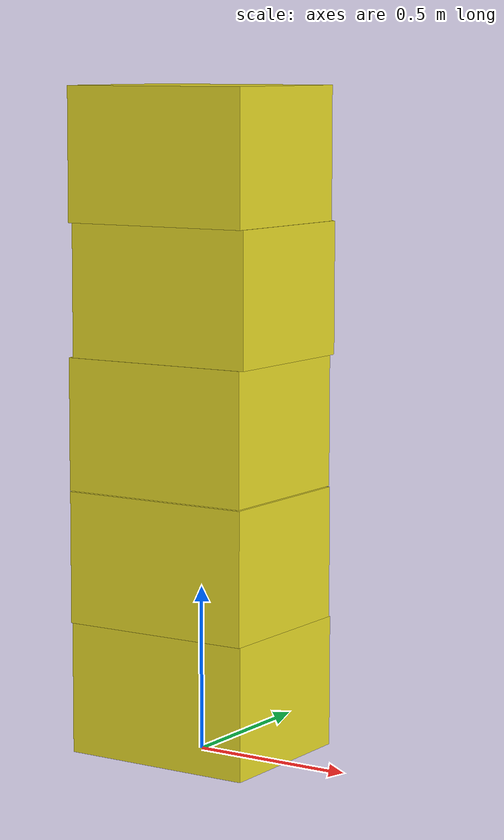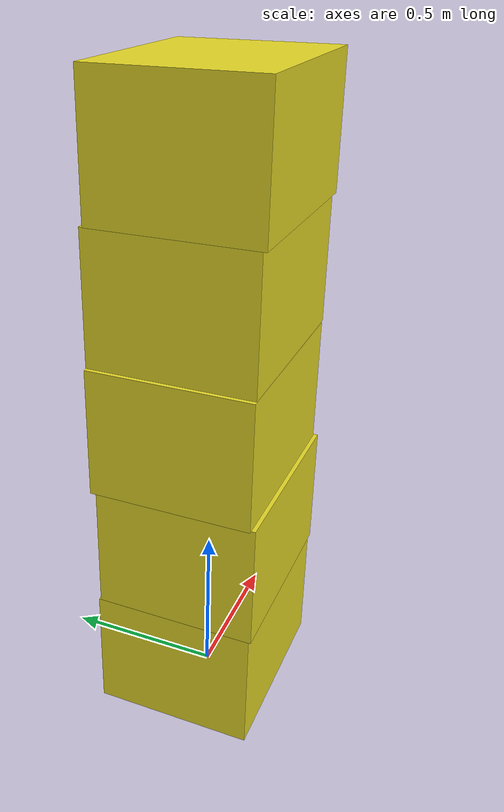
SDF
<?xml version="1.0" encoding="UTF-8"?>
<sdf version='1.4'>
   <model name="baggage_C_x5">
      <model name="baggage_C_0">
         <static>true</static>
         <link name="link">
               <collision name="collision">
                  <geometry>
                     <box>
                        <size>0.6 0.5 0.4</size>
                     </box>
                  </geometry>
               </collision>
               <visual name="visual">
                  <geometry>
                     <box>
                        <size>0.6 0.5 0.4</size>
                     </box>
                  </geometry>
                  <material>
                     <script>
                        <uri>file://media/materials/scripts/gazebo.material</uri>
                        <name>Gazebo/Yellow</name>
                     </script>
                  </material>
               </visual>
            </link>
            <pose frame=''>0 0 0.2 0 0 0</pose>
      </model>
      <model name="baggage_C_1">
         <static>true</static>
         <link name="link">
               <collision name="collision">
                  <geometry>
                     <box>
                        <size>0.6 0.5 0.4</size>
                     </box>
                  </geometry>
               </collision>
               <visual name="visual">
                  <geometry>
                     <box>
                        <size>0.6 0.5 0.4</size>
                     </box>
                  </geometry>
                  <material>
                     <script>
                        <uri>file://media/materials/scripts/gazebo.material</uri>
                        <name>Gazebo/Yellow</name>
                     </script>
                  </material>
               </visual>
            </link>
            <pose frame=''>0.0004 -0.0065 0.6 0 0 0</pose>
      </model>
      <model name="baggage_C_2">
         <static>true</static>
         <link name="link">
               <collision name="collision">
                  <geometry>
                     <box>
                        <size>0.6 0.5 0.4</size>
                     </box>
                  </geometry>
               </collision>
               <visual name="visual">
                  <geometry>
                     <box>
                        <size>0.6 0.5 0.4</size>
                     </box>
                  </geometry>
                  <material>
                     <script>
                        <uri>file://media/materials/scripts/gazebo.material</uri>
                        <name>Gazebo/Yellow</name>
                     </script>
                  </material>
               </visual>
            </link>
            <pose frame=''>-0.0097 0.0061 1.0 0 0 0</pose>
      </model>
      <model name="baggage_C_3">
         <static>true</static>
         <link name="link">
               <collision name="collision">
                  <geometry>
                     <box>
                        <size>0.6 0.5 0.4</size>
                     </box>
                  </geometry>
               </collision>
               <visual name="visual">
                  <geometry>
                     <box>
                        <size>0.6 0.5 0.4</size>
                     </box>
                  </geometry>
                  <material>
                     <script>
                        <uri>file://media/materials/scripts/gazebo.material</uri>
                        <name>Gazebo/Yellow</name>
                     </script>
                  </material>
               </visual>
            </link>
            <pose frame=''>0.0039 0.0077 1.4 0 0 0</pose>
      </model>
      <model name="baggage_C_4">
         <static>true</static>
         <link name="link">
               <collision name="collision">
                  <geometry>
                     <box>
                        <size>0.6 0.5 0.4</size>
                     </box>
                  </geometry>
               </collision>
               <visual name="visual">
                  <geometry>
                     <box>
                        <size>0.6 0.5 0.4</size>
                     </box>
                  </geometry>
                  <material>
                     <script>
                        <uri>file://media/materials/scripts/gazebo.material</uri>
                        <name>Gazebo/Yellow</name>
                     </script>
                  </material>
               </visual>
            </link>
            <pose frame=''>-0.0001 -0.0044 1.8 0 0 0</pose>
      </model>
   </model>
</sdf>
